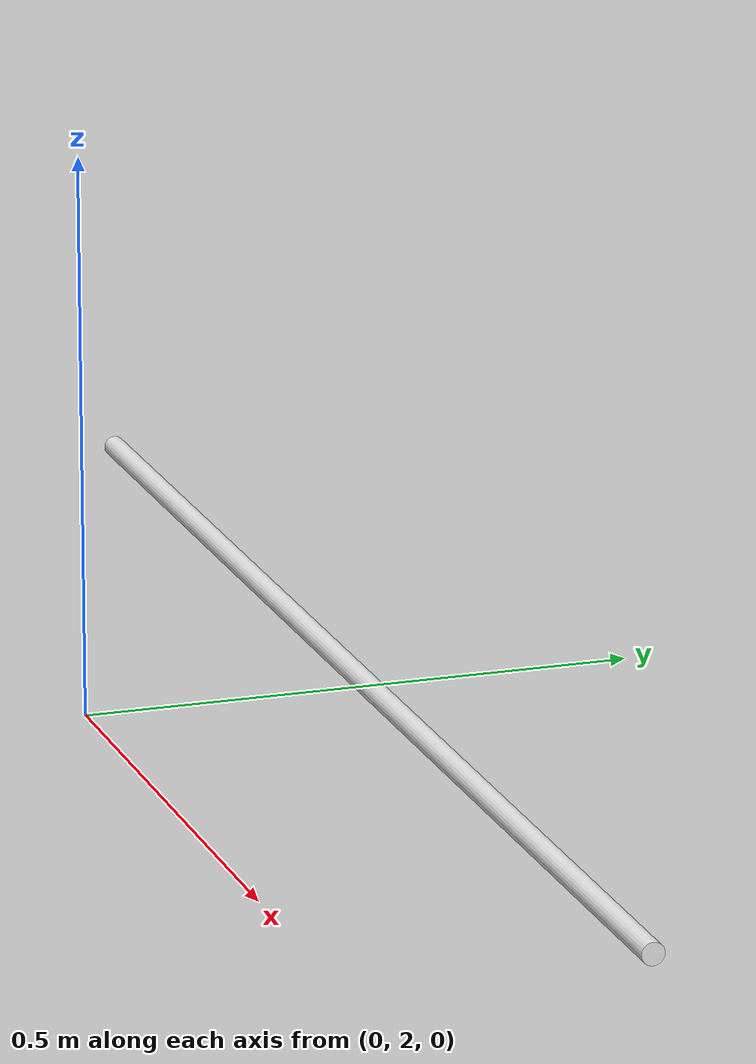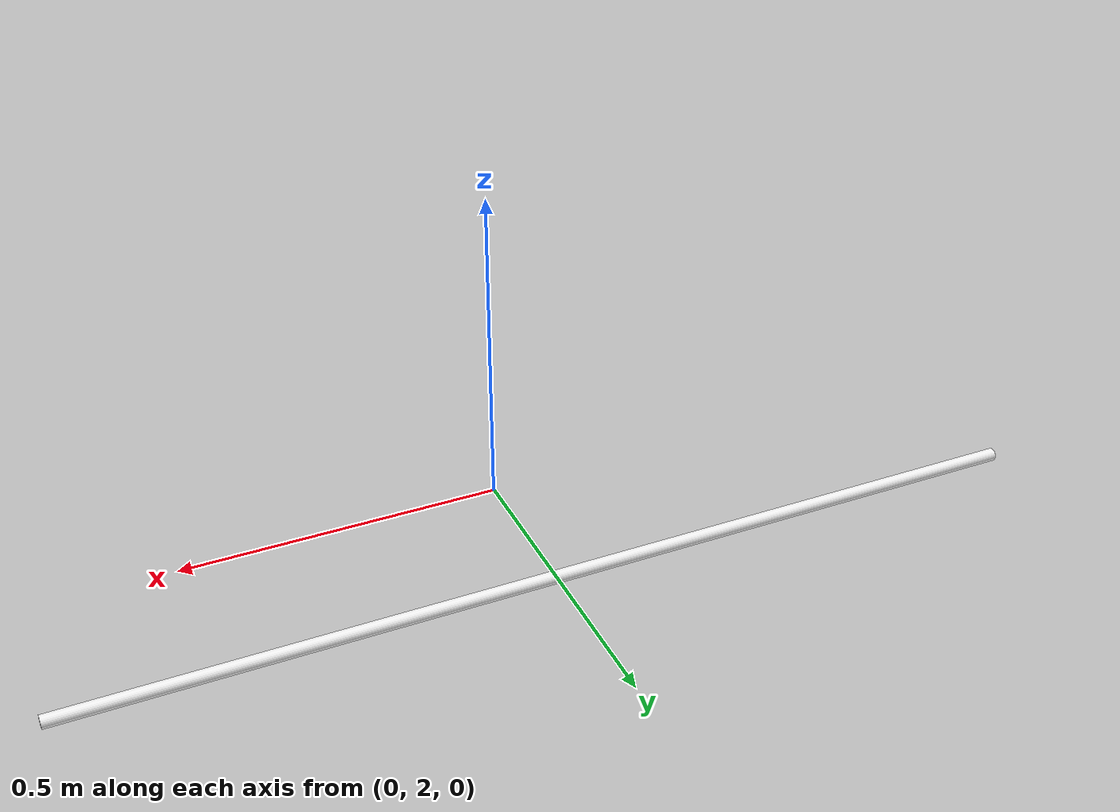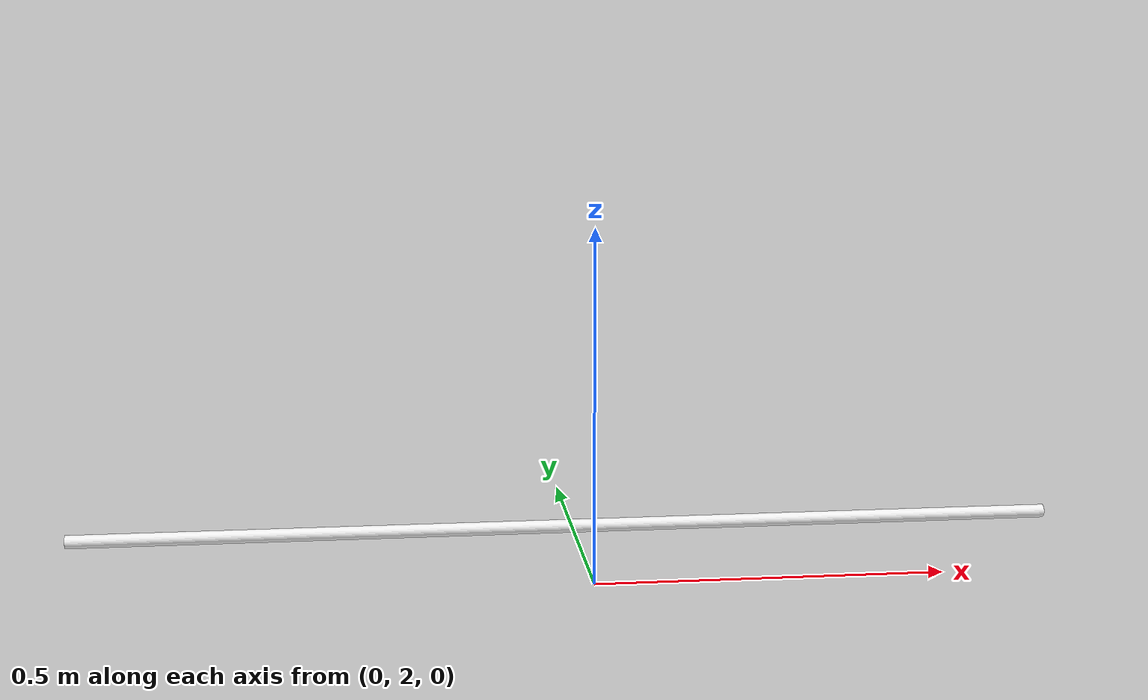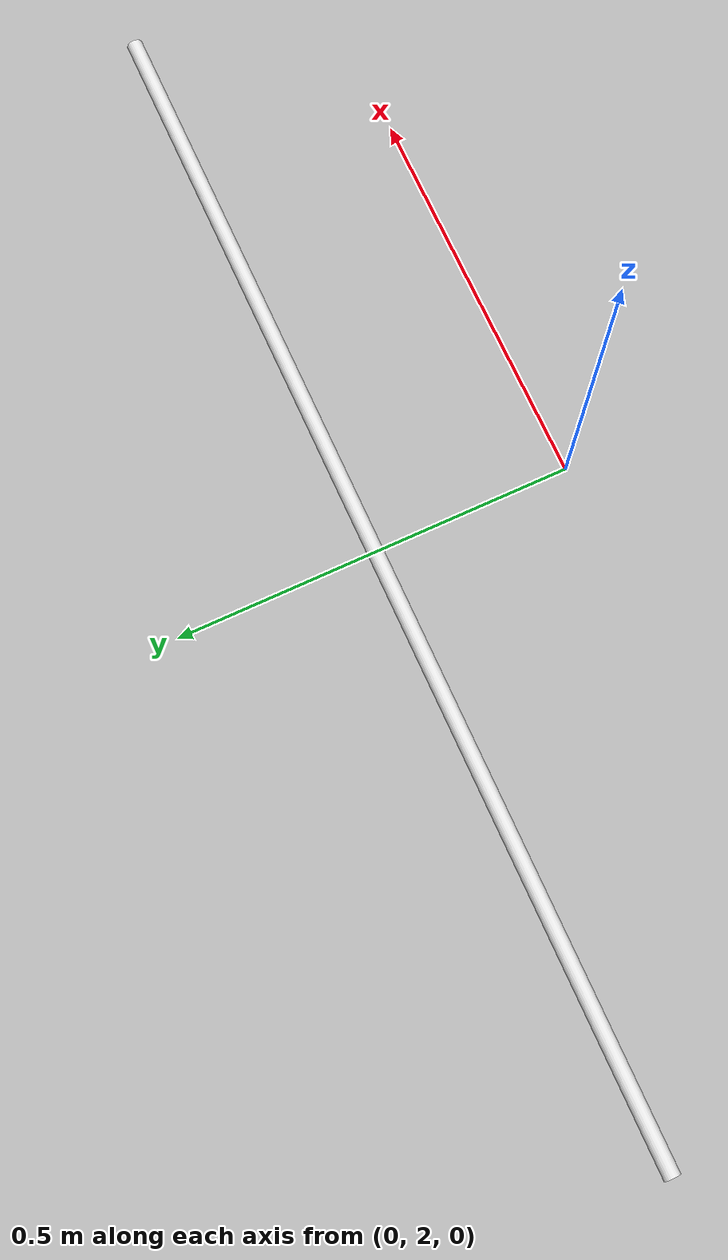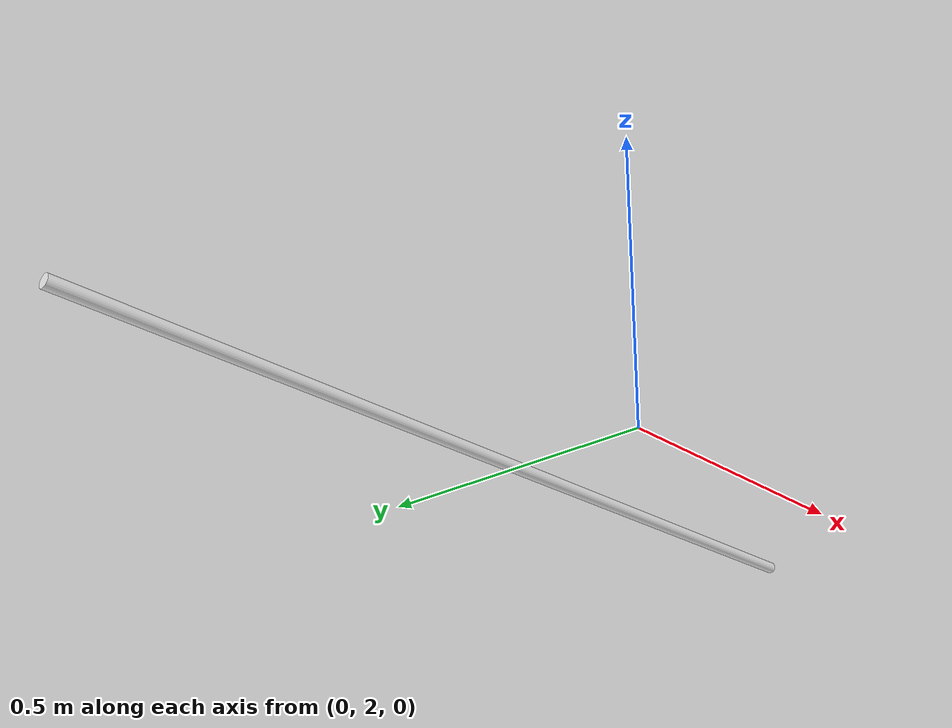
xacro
<?xml version="1.0" ?>
<robot name="robot2" xmlns:xacro="http://ros.org/wiki/xacro">

 <xacro:include filename="$(find robot2_description)/urdf/robot2_2.xacro" />

 <link name="world">
 </link>

    <!-- base_link is a large rectangular plate. Some things to note: -->
    <!-- - We set the visual origin Z to half the box height, so that the link origin sits at the bottom of the box -->

   	<gazebo reference="base_link">
    		<material>Gazebo/Black</material>
  	</gazebo>

	 <!-- Axis_2 Link-->

	 <!-- Axis_3 Link-->

 	<xacro:joint_revolute_y joint_name="axis_3_joint" parent_link ="world"
		child_link ="axis_4_link">
	 <origin xyz="0 ${axis_4_height} ${axis_2_radius}" rpy="0 ${-90*deg_to_rad} 0"/>
	</xacro:joint_revolute_y>

	 <!-- Axis_4 Link-->

 	<link name="axis_4_link">
	<xacro:cylinder_visual_collision_white radius ="${axis_2_radius}" length = "${axis_4_height}">
	<origin  xyz="0  ${axis_4_height/2}   ${axis_2_radius} " rpy="0 0  0"/>
	</xacro:cylinder_visual_collision_white>
	 <xacro:inertial_cylinder mass="1.2" length = "${axis_4_height}" radius ="${axis_2_radius}">
           <origin  xyz="0 ${axis_4_height/2} ${axis_2_radius}" rpy="0 0 0"/>
        </xacro:inertial_cylinder>
	</link>

		 <!-- Axis_5 Link-->

	<xacro:transmission joint_name="axis_3_joint">
	</xacro:transmission>

  <gazebo>
    <plugin name="gazebo_ros_control" filename="libgazebo_ros_control.so">
          <robotNamespace>/robot2</robotNamespace>
     <robotSimType>gazebo_ros_control/DefaultRobotHWSim</robotSimType>
    </plugin>
  </gazebo>

</robot>

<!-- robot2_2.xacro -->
<robot xmlns:xacro="http://www.ros.org/wiki/xacro" >

	 <!-- Include materials -->

     <xacro:property name="deg_to_rad" value="0.01745329251994329577"/>

  <!-- Constants -->
  <xacro:property name="M_SCALE_CM" value="0.01"/>
  <xacro:property name="M_PI" value="3.14159"/>

  <!-- Base properties -->
  <xacro:property name="base_height" value="0.1" />
  <xacro:property name="base_width" value="0.1" />

  <!-- Axis_2 Fixed Angles-->
  <xacro:property name="axis_2_height" value="0.343" />
  <xacro:property name="axis_2_radius" value="${0.01}" />

  <!-- Axis_3 Shoulder_Rotation -->
  <xacro:property name="axis_3_height" value="${0.267}" />

  <!-- Axis_4_Forearm_rotation-->
  <xacro:property name="axis_4_height" value="${1.5}" />

  <!-- Axis_5 Wrist rotation-->
  <xacro:property name="axis_5_height" value="${1.5}" />

  <xacro:macro name="inertial_box" params="mass x y z *origin">
        <inertial>
            <xacro:insert_block name="origin"/>
            <mass value="${mass}" />
            <inertia ixx="${(1/12) * mass * (y*y+z*z)}" ixy="0.0" ixz="0.0"
                    iyy="${(1/12) * mass * (x*x+z*z)}" iyz="0.0"
                    izz="${(1/12) * mass * (x*x+y*y)}" />
        </inertial>
    </xacro:macro>

    <xacro:macro name="inertial_cylinder" params="mass length radius *origin">
        <inertial>
            <xacro:insert_block name="origin"/>
            <mass value="${mass}" />
            <inertia ixx="${(1/12)*mass*(3*radius*radius+length*length)}" 				ixy="0.0" ixz="0.0"
                    iyy="${(1/12)*mass*(3*radius*radius+length*length)}" 				iyz="0.0"
                    izz="${(1/12)*mass*(radius*radius)}" />
        </inertial>
    </xacro:macro>

     <xacro:macro name="inertial_sphere" params="mass radius *origin">
        <inertial>
            <xacro:insert_block name="origin"/>
            <mass value="${mass}" />
            <inertia ixx="${(2/5) * mass * (radius*radius)}" ixy="0.0" ixz="0.0"
                    iyy="${(2/5) * mass * (radius*radius)}" iyz="0.0"
                    izz="${(2/5) * mass * (radius*radius)}" />
        </inertial>
    </xacro:macro>

<!-- Max effort 2 not wokring check  -->
  <xacro:property name="max_rads" value="10.157816"/>
  <xacro:property name="max_effort_2" value="17"/>

   <xacro:macro name="joint_revolute_z" params="joint_name parent_link child_link *origin">
        <joint name ="${joint_name}" type="revolute">
        <axis xyz="0 0 1" />
        <limit effort="15" velocity="${max_rads}" lower="-1.57" 					upper="1.57"/>
        <parent link ="${parent_link}"/>
    	<child link ="${child_link}"/>
        <xacro:insert_block name="origin"/>
  	</joint>
   </xacro:macro>

   <xacro:macro name="joint_revolute_y" params="joint_name parent_link child_link  *origin">
        <joint name = "${joint_name}" type= "revolute">
        <axis xyz="0 1 0" />
        <dynamics damping ="1" friction="2"/>
        <limit effort="50" velocity="${max_rads}" lower="${-150*deg_to_rad}" 				upper="${150*deg_to_rad}"/>
        <parent link="${parent_link}"/>
    	<child link="${child_link}"/>
            <xacro:insert_block name="origin"/>
    </joint>
    </xacro:macro>

     <xacro:macro name="cylinder_visual_collision_white" params="radius length  				*origin">
       <visual>
             <xacro:insert_block name="origin"/>
            <geometry>
                <cylinder radius="${radius}" length="${length}"/>
            </geometry>
            <material name="White"/>
        </visual>
        <collision>
             <xacro:insert_block name="origin"/>
            <geometry>
                <cylinder radius="${radius}" length="${length}"/>
            </geometry>
        </collision>
    </xacro:macro>

      <xacro:macro name="cylinder_visual_collision_red" params="radius length  				*origin">
       <visual>
             <xacro:insert_block name="origin"/>
            <geometry>
                <cylinder radius="${radius}" length="${length}"/>
            </geometry>
            <material name="Red"/>
        </visual>
        <collision>
             <xacro:insert_block name="origin"/>
            <geometry>
                <cylinder radius="${radius}" length="${length}"/>
            </geometry>
        </collision>
    </xacro:macro>
    <xacro:macro name="transmission" params= "joint_name">
     <transmission name="trans_${joint_name}">
  		<type>transmission_interface/SimpleTransmission</type>
     		<joint name="${joint_name}">
        		<hardwareInterface>hardware_interface/EffortJointInterface</hardwareInterface>
      		</joint>
      		<actuator name="motor_${joint_name}">
        		<hardwareInterface>hardware_interface/EffortJointInterface</hardwareInterface>
        		<mechanicalReduction>1</mechanicalReduction>
      		</actuator>
    	</transmission>
   </xacro:macro>

 </robot>
